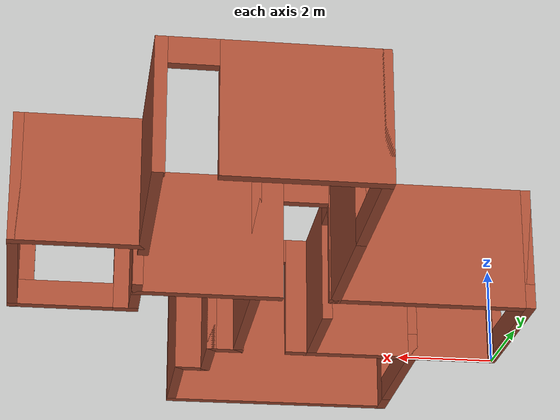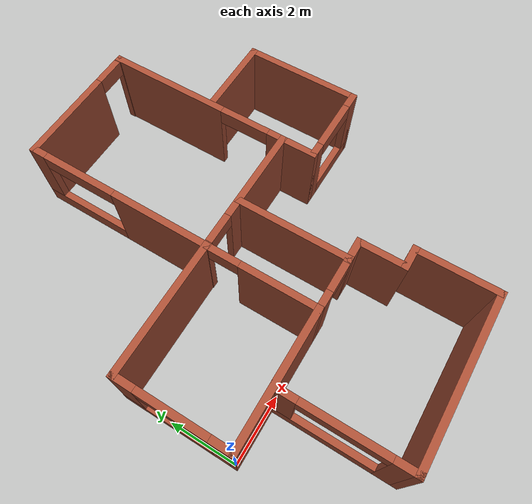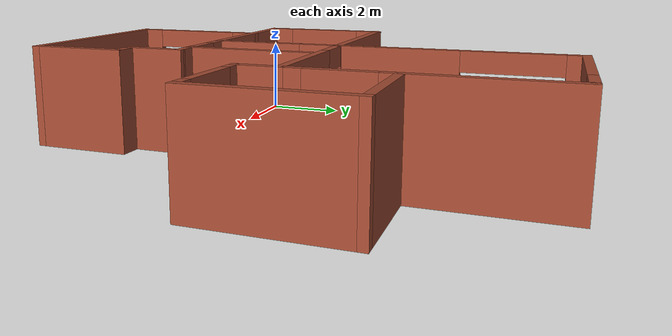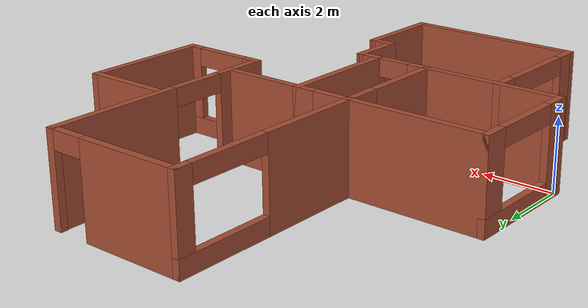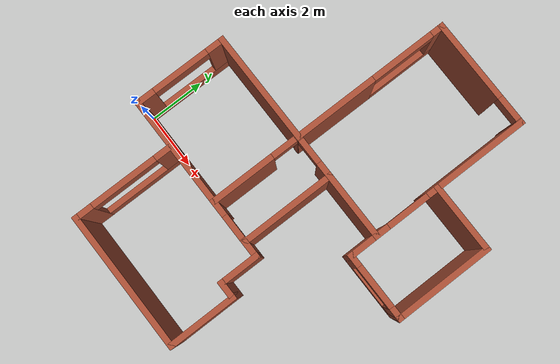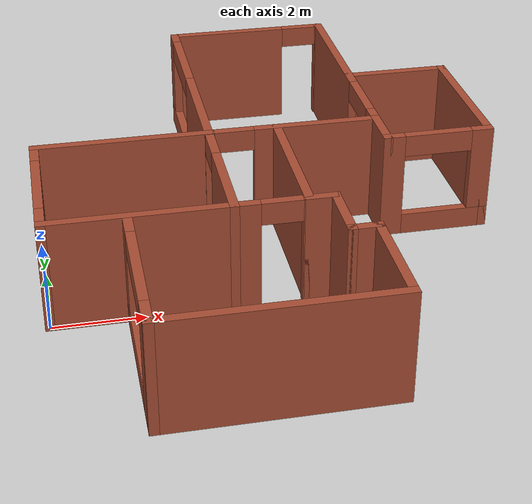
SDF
<?xml version='1.0'?>
<sdf version='1.7'>
  <model name='house'>
    <pose>5.025 2.65 0 0 -0 0</pose>
    <link name='Wall_0'>
      <pose>-5.025 -1.025 0 0 -0 1.5708</pose>
      <visual name='Wall_0_Visual_0'>
        <pose>-1.36843 0 1.25 0 -0 0</pose>
        <geometry>
          <box>
            <size>0.713143 0.2 2.5</size>
          </box>
        </geometry>
        <material>
          <script>
            <uri>file://media/materials/scripts/gazebo.material</uri>
            <name>Gazebo/Bricks</name>
          </script>
          <ambient>1 1 1 1</ambient>
        </material>
        <meta>
          <layer>0</layer>
        </meta>
      </visual>
      <collision name='Wall_0_Collision_0'>
        <geometry>
          <box>
            <size>0.713143 0.2 2.5</size>
          </box>
        </geometry>
        <pose>-1.36843 0 1.25 0 -0 0</pose>
      </collision>
      <visual name='Wall_0_Visual_1'>
        <pose>0.356572 0 0.25 0 -0 0</pose>
        <geometry>
          <box>
            <size>2.73686 0.2 0.5</size>
          </box>
        </geometry>
        <material>
          <script>
            <uri>file://media/materials/scripts/gazebo.material</uri>
            <name>Gazebo/Bricks</name>
          </script>
          <ambient>1 1 1 1</ambient>
        </material>
        <meta>
          <layer>0</layer>
        </meta>
      </visual>
      <collision name='Wall_0_Collision_1'>
        <geometry>
          <box>
            <size>2.73686 0.2 0.5</size>
          </box>
        </geometry>
        <pose>0.356572 0 0.25 0 -0 0</pose>
      </collision>
      <visual name='Wall_0_Visual_2'>
        <pose>1.37355 0 1.5 0 -0 0</pose>
        <geometry>
          <box>
            <size>0.702896 0.2 2</size>
          </box>
        </geometry>
        <material>
          <script>
            <uri>file://media/materials/scripts/gazebo.material</uri>
            <name>Gazebo/Bricks</name>
          </script>
          <ambient>1 1 1 1</ambient>
        </material>
        <meta>
          <layer>0</layer>
        </meta>
      </visual>
      <collision name='Wall_0_Collision_2'>
        <geometry>
          <box>
            <size>0.702896 0.2 2</size>
          </box>
        </geometry>
        <pose>1.37355 0 1.5 0 -0 0</pose>
      </collision>
      <visual name='Wall_0_Visual_3'>
        <pose>0.005124 0 2.25 0 -0 0</pose>
        <geometry>
          <box>
            <size>2.03396 0.2 0.5</size>
          </box>
        </geometry>
        <material>
          <script>
            <uri>file://media/materials/scripts/gazebo.material</uri>
            <name>Gazebo/Bricks</name>
          </script>
          <ambient>1 1 1 1</ambient>
        </material>
        <meta>
          <layer>0</layer>
        </meta>
      </visual>
      <collision name='Wall_0_Collision_3'>
        <geometry>
          <box>
            <size>2.03396 0.2 0.5</size>
          </box>
        </geometry>
        <pose>0.005124 0 2.25 0 -0 0</pose>
      </collision>
    </link>
    <link name='Wall_10'>
      <pose>-1.175 3.425 0 0 -0 1.5708</pose>
      <visual name='Wall_10_Visual_0'>
        <pose>-1.40095 0 1.25 0 -0 0</pose>
        <geometry>
          <box>
            <size>3.0481 0.2 2.5</size>
          </box>
        </geometry>
        <material>
          <script>
            <uri>file://media/materials/scripts/gazebo.material</uri>
            <name>Gazebo/Bricks</name>
          </script>
          <ambient>1 1 1 1</ambient>
        </material>
        <meta>
          <layer>0</layer>
        </meta>
      </visual>
      <collision name='Wall_10_Collision_0'>
        <geometry>
          <box>
            <size>3.0481 0.2 2.5</size>
          </box>
        </geometry>
        <pose>-1.40095 0 1.25 0 -0 0</pose>
      </collision>
      <visual name='Wall_10_Visual_1'>
        <pose>1.52405 0 0.25 0 -0 0</pose>
        <geometry>
          <box>
            <size>2.8019 0.2 0.5</size>
          </box>
        </geometry>
        <material>
          <script>
            <uri>file://media/materials/scripts/gazebo.material</uri>
            <name>Gazebo/Bricks</name>
          </script>
          <ambient>1 1 1 1</ambient>
        </material>
        <meta>
          <layer>0</layer>
        </meta>
      </visual>
      <collision name='Wall_10_Collision_1'>
        <geometry>
          <box>
            <size>2.8019 0.2 0.5</size>
          </box>
        </geometry>
        <pose>1.52405 0 0.25 0 -0 0</pose>
      </collision>
      <visual name='Wall_10_Visual_2'>
        <pose>2.67164 0 1.5 0 -0 0</pose>
        <geometry>
          <box>
            <size>0.506722 0.2 2</size>
          </box>
        </geometry>
        <material>
          <script>
            <uri>file://media/materials/scripts/gazebo.material</uri>
            <name>Gazebo/Bricks</name>
          </script>
          <ambient>1 1 1 1</ambient>
        </material>
        <meta>
          <layer>0</layer>
        </meta>
      </visual>
      <collision name='Wall_10_Collision_2'>
        <geometry>
          <box>
            <size>0.506722 0.2 2</size>
          </box>
        </geometry>
        <pose>2.67164 0 1.5 0 -0 0</pose>
      </collision>
      <visual name='Wall_10_Visual_3'>
        <pose>1.27069 0 2.25 0 -0 0</pose>
        <geometry>
          <box>
            <size>2.29518 0.2 0.5</size>
          </box>
        </geometry>
        <material>
          <script>
            <uri>file://media/materials/scripts/gazebo.material</uri>
            <name>Gazebo/Bricks</name>
          </script>
          <ambient>1 1 1 1</ambient>
        </material>
        <meta>
          <layer>0</layer>
        </meta>
      </visual>
      <collision name='Wall_10_Collision_3'>
        <geometry>
          <box>
            <size>2.29518 0.2 0.5</size>
          </box>
        </geometry>
        <pose>1.27069 0 2.25 0 -0 0</pose>
      </collision>
    </link>
    <link name='Wall_12'>
      <pose>0.75 6.25 0 0 -0 0</pose>
      <visual name='Wall_12_Visual_0'>
        <pose>-0.551233 0 1.25 0 -0 0</pose>
        <geometry>
          <box>
            <size>2.94753 0.2 2.5</size>
          </box>
        </geometry>
        <material>
          <script>
            <uri>file://media/materials/scripts/gazebo.material</uri>
            <name>Gazebo/Bricks</name>
          </script>
          <ambient>1 1 1 1</ambient>
        </material>
        <meta>
          <layer>0</layer>
        </meta>
      </visual>
      <collision name='Wall_12_Collision_0'>
        <geometry>
          <box>
            <size>2.94753 0.2 2.5</size>
          </box>
        </geometry>
        <pose>-0.551233 0 1.25 0 -0 0</pose>
      </collision>
      <visual name='Wall_12_Visual_1'>
        <pose>1.91377 0 1.25 0 -0 0</pose>
        <geometry>
          <box>
            <size>0.222466 0.2 2.5</size>
          </box>
        </geometry>
        <material>
          <script>
            <uri>file://media/materials/scripts/gazebo.material</uri>
            <name>Gazebo/Bricks</name>
          </script>
          <ambient>1 1 1 1</ambient>
        </material>
        <meta>
          <layer>0</layer>
        </meta>
      </visual>
      <collision name='Wall_12_Collision_1'>
        <geometry>
          <box>
            <size>0.222466 0.2 2.5</size>
          </box>
        </geometry>
        <pose>1.91377 0 1.25 0 -0 0</pose>
      </collision>
      <visual name='Wall_12_Visual_2'>
        <pose>1.36253 0 2.25 0 -0 0</pose>
        <geometry>
          <box>
            <size>0.88 0.2 0.5</size>
          </box>
        </geometry>
        <material>
          <script>
            <uri>file://media/materials/scripts/gazebo.material</uri>
            <name>Gazebo/Bricks</name>
          </script>
          <ambient>1 1 1 1</ambient>
        </material>
        <meta>
          <layer>0</layer>
        </meta>
      </visual>
      <collision name='Wall_12_Collision_2'>
        <geometry>
          <box>
            <size>0.88 0.2 0.5</size>
          </box>
        </geometry>
        <pose>1.36253 0 2.25 0 -0 0</pose>
      </collision>
    </link>
    <link name='Wall_14'>
      <pose>2.675 3.425 0 0 -0 -1.5708</pose>
      <visual name='Wall_14_Visual_0'>
        <pose>-1.04269 0 1.25 0 -0 0</pose>
        <geometry>
          <box>
            <size>3.76461 0.2 2.5</size>
          </box>
        </geometry>
        <material>
          <script>
            <uri>file://media/materials/scripts/gazebo.material</uri>
            <name>Gazebo/Bricks</name>
          </script>
          <ambient>1 1 1 1</ambient>
        </material>
        <meta>
          <layer>0</layer>
        </meta>
      </visual>
      <collision name='Wall_14_Collision_0'>
        <geometry>
          <box>
            <size>3.76461 0.2 2.5</size>
          </box>
        </geometry>
        <pose>-1.04269 0 1.25 0 -0 0</pose>
      </collision>
      <visual name='Wall_14_Visual_1'>
        <pose>2.64289 0 1.25 0 -0 0</pose>
        <geometry>
          <box>
            <size>0.564216 0.2 2.5</size>
          </box>
        </geometry>
        <material>
          <script>
            <uri>file://media/materials/scripts/gazebo.material</uri>
            <name>Gazebo/Bricks</name>
          </script>
          <ambient>1 1 1 1</ambient>
        </material>
        <meta>
          <layer>0</layer>
        </meta>
      </visual>
      <collision name='Wall_14_Collision_1'>
        <geometry>
          <box>
            <size>0.564216 0.2 2.5</size>
          </box>
        </geometry>
        <pose>2.64289 0 1.25 0 -0 0</pose>
      </collision>
      <visual name='Wall_14_Visual_2'>
        <pose>1.6002 0 2.25 0 -0 0</pose>
        <geometry>
          <box>
            <size>1.52117 0.2 0.5</size>
          </box>
        </geometry>
        <material>
          <script>
            <uri>file://media/materials/scripts/gazebo.material</uri>
            <name>Gazebo/Bricks</name>
          </script>
          <ambient>1 1 1 1</ambient>
        </material>
        <meta>
          <layer>0</layer>
        </meta>
      </visual>
      <collision name='Wall_14_Collision_2'>
        <geometry>
          <box>
            <size>1.52117 0.2 0.5</size>
          </box>
        </geometry>
        <pose>1.6002 0 2.25 0 -0 0</pose>
      </collision>
    </link>
    <link name='Wall_16'>
      <pose>0.75 0.6 0 0 -0 3.14159</pose>
      <visual name='Wall_16_Visual_0'>
        <pose>-0.561481 0 1.25 0 -0 0</pose>
        <geometry>
          <box>
            <size>2.92704 0.2 2.5</size>
          </box>
        </geometry>
        <material>
          <script>
            <uri>file://media/materials/scripts/gazebo.material</uri>
            <name>Gazebo/Bricks</name>
          </script>
          <ambient>1 1 1 1</ambient>
        </material>
        <meta>
          <layer>0</layer>
        </meta>
      </visual>
      <collision name='Wall_16_Collision_0'>
        <geometry>
          <box>
            <size>2.92704 0.2 2.5</size>
          </box>
        </geometry>
        <pose>-0.561481 0 1.25 0 -0 0</pose>
      </collision>
      <visual name='Wall_16_Visual_1'>
        <pose>1.91352 0 1.25 0 -0 0</pose>
        <geometry>
          <box>
            <size>0.222963 0.2 2.5</size>
          </box>
        </geometry>
        <material>
          <script>
            <uri>file://media/materials/scripts/gazebo.material</uri>
            <name>Gazebo/Bricks</name>
          </script>
          <ambient>1 1 1 1</ambient>
        </material>
        <meta>
          <layer>0</layer>
        </meta>
      </visual>
      <collision name='Wall_16_Collision_1'>
        <geometry>
          <box>
            <size>0.222963 0.2 2.5</size>
          </box>
        </geometry>
        <pose>1.91352 0 1.25 0 -0 0</pose>
      </collision>
      <visual name='Wall_16_Visual_2'>
        <pose>1.35204 0 2.25 0 -0 0</pose>
        <geometry>
          <box>
            <size>0.9 0.2 0.5</size>
          </box>
        </geometry>
        <material>
          <script>
            <uri>file://media/materials/scripts/gazebo.material</uri>
            <name>Gazebo/Bricks</name>
          </script>
          <ambient>1 1 1 1</ambient>
        </material>
        <meta>
          <layer>0</layer>
        </meta>
      </visual>
      <collision name='Wall_16_Collision_2'>
        <geometry>
          <box>
            <size>0.9 0.2 0.5</size>
          </box>
        </geometry>
        <pose>1.35204 0 2.25 0 -0 0</pose>
      </collision>
    </link>
    <link name='Wall_18'>
      <pose>3.85 -0.375 0 0 -0 0</pose>
      <visual name='Wall_18_Visual_0'>
        <pose>-1.02416 0 1.25 0 -0 0</pose>
        <geometry>
          <box>
            <size>0.501673 0.2 2.5</size>
          </box>
        </geometry>
        <material>
          <script>
            <uri>file://media/materials/scripts/gazebo.material</uri>
            <name>Gazebo/Bricks</name>
          </script>
          <ambient>1 1 1 1</ambient>
        </material>
        <meta>
          <layer>0</layer>
        </meta>
      </visual>
      <collision name='Wall_18_Collision_0'>
        <geometry>
          <box>
            <size>0.501673 0.2 2.5</size>
          </box>
        </geometry>
        <pose>-1.02416 0 1.25 0 -0 0</pose>
      </collision>
      <visual name='Wall_18_Visual_1'>
        <pose>0.250837 0 0.25 0 -0 0</pose>
        <geometry>
          <box>
            <size>2.04833 0.2 0.5</size>
          </box>
        </geometry>
        <material>
          <script>
            <uri>file://media/materials/scripts/gazebo.material</uri>
            <name>Gazebo/Bricks</name>
          </script>
          <ambient>1 1 1 1</ambient>
        </material>
        <meta>
          <layer>0</layer>
        </meta>
      </visual>
      <collision name='Wall_18_Collision_1'>
        <geometry>
          <box>
            <size>2.04833 0.2 0.5</size>
          </box>
        </geometry>
        <pose>0.250837 0 0.25 0 -0 0</pose>
      </collision>
      <visual name='Wall_18_Visual_2'>
        <pose>1.02465 0 1.5 0 -0 0</pose>
        <geometry>
          <box>
            <size>0.500698 0.2 2</size>
          </box>
        </geometry>
        <material>
          <script>
            <uri>file://media/materials/scripts/gazebo.material</uri>
            <name>Gazebo/Bricks</name>
          </script>
          <ambient>1 1 1 1</ambient>
        </material>
        <meta>
          <layer>0</layer>
        </meta>
      </visual>
      <collision name='Wall_18_Collision_2'>
        <geometry>
          <box>
            <size>0.500698 0.2 2</size>
          </box>
        </geometry>
        <pose>1.02465 0 1.5 0 -0 0</pose>
      </collision>
      <visual name='Wall_18_Visual_3'>
        <pose>0.000487 0 2.25 0 -0 0</pose>
        <geometry>
          <box>
            <size>1.54763 0.2 0.5</size>
          </box>
        </geometry>
        <material>
          <script>
            <uri>file://media/materials/scripts/gazebo.material</uri>
            <name>Gazebo/Bricks</name>
          </script>
          <ambient>1 1 1 1</ambient>
        </material>
        <meta>
          <layer>0</layer>
        </meta>
      </visual>
      <collision name='Wall_18_Collision_3'>
        <geometry>
          <box>
            <size>1.54763 0.2 0.5</size>
          </box>
        </geometry>
        <pose>0.000487 0 2.25 0 -0 0</pose>
      </collision>
    </link>
    <link name='Wall_2'>
      <collision name='Wall_2_Collision'>
        <geometry>
          <box>
            <size>4.05 0.2 2.5</size>
          </box>
        </geometry>
        <pose>0 0 1.25 0 -0 0</pose>
      </collision>
      <visual name='Wall_2_Visual'>
        <pose>0 0 1.25 0 -0 0</pose>
        <geometry>
          <box>
            <size>4.05 0.2 2.5</size>
          </box>
        </geometry>
        <material>
          <script>
            <uri>file://media/materials/scripts/gazebo.material</uri>
            <name>Gazebo/Bricks</name>
          </script>
          <ambient>1 1 1 1</ambient>
        </material>
        <meta>
          <layer>0</layer>
        </meta>
      </visual>
      <pose>-3.1 -2.65 0 0 -0 0</pose>
    </link>
    <link name='Wall_20'>
      <collision name='Wall_20_Collision'>
        <geometry>
          <box>
            <size>3.55 0.2 2.5</size>
          </box>
        </geometry>
        <pose>0 0 1.25 0 -0 0</pose>
      </collision>
      <visual name='Wall_20_Visual'>
        <pose>0 0 1.25 0 -0 0</pose>
        <geometry>
          <box>
            <size>3.55 0.2 2.5</size>
          </box>
        </geometry>
        <material>
          <script>
            <uri>file://media/materials/scripts/gazebo.material</uri>
            <name>Gazebo/Bricks</name>
          </script>
          <ambient>1 1 1 1</ambient>
        </material>
        <meta>
          <layer>0</layer>
        </meta>
      </visual>
      <pose>5.025 1.3 0 0 -0 1.5708</pose>
    </link>
    <link name='Wall_22'>
      <collision name='Wall_22_Collision'>
        <geometry>
          <box>
            <size>2.55 0.2 2.5</size>
          </box>
        </geometry>
        <pose>0 0 1.25 0 -0 0</pose>
      </collision>
      <visual name='Wall_22_Visual'>
        <pose>0 0 1.25 0 -0 0</pose>
        <geometry>
          <box>
            <size>2.55 0.2 2.5</size>
          </box>
        </geometry>
        <material>
          <script>
            <uri>file://media/materials/scripts/gazebo.material</uri>
            <name>Gazebo/Bricks</name>
          </script>
          <ambient>1 1 1 1</ambient>
        </material>
        <meta>
          <layer>0</layer>
        </meta>
      </visual>
      <pose>3.85 2.975 0 0 -0 3.14159</pose>
    </link>
    <link name='Wall_24'>
      <collision name='Wall_24_Collision'>
        <geometry>
          <box>
            <size>1.175 0.2 2.5</size>
          </box>
        </geometry>
        <pose>0 0 1.25 0 -0 0</pose>
      </collision>
      <visual name='Wall_24_Visual'>
        <pose>0 0 1.25 0 -0 0</pose>
        <geometry>
          <box>
            <size>1.175 0.2 2.5</size>
          </box>
        </geometry>
        <material>
          <script>
            <uri>file://media/materials/scripts/gazebo.material</uri>
            <name>Gazebo/Bricks</name>
          </script>
          <ambient>1 1 1 1</ambient>
        </material>
        <meta>
          <layer>0</layer>
        </meta>
      </visual>
      <pose>2.675 0.1125 0 0 -0 -1.5708</pose>
    </link>
    <link name='Wall_26'>
      <pose>-3.325 -4.45 0 0 -0 1.5708</pose>
      <visual name='Wall_26_Visual_0'>
        <pose>-1.54493 0 1.25 0 -0 0</pose>
        <geometry>
          <box>
            <size>0.710145 0.2 2.5</size>
          </box>
        </geometry>
        <material>
          <script>
            <uri>file://media/materials/scripts/gazebo.material</uri>
            <name>Gazebo/Bricks</name>
          </script>
          <ambient>1 1 1 1</ambient>
        </material>
        <meta>
          <layer>0</layer>
        </meta>
      </visual>
      <collision name='Wall_26_Collision_0'>
        <geometry>
          <box>
            <size>0.710145 0.2 2.5</size>
          </box>
        </geometry>
        <pose>-1.54493 0 1.25 0 -0 0</pose>
      </collision>
      <visual name='Wall_26_Visual_1'>
        <pose>0.355072 0 0.25 0 -0 0</pose>
        <geometry>
          <box>
            <size>3.08986 0.2 0.5</size>
          </box>
        </geometry>
        <material>
          <script>
            <uri>file://media/materials/scripts/gazebo.material</uri>
            <name>Gazebo/Bricks</name>
          </script>
          <ambient>1 1 1 1</ambient>
        </material>
        <meta>
          <layer>0</layer>
        </meta>
      </visual>
      <collision name='Wall_26_Collision_1'>
        <geometry>
          <box>
            <size>3.08986 0.2 0.5</size>
          </box>
        </geometry>
        <pose>0.355072 0 0.25 0 -0 0</pose>
      </collision>
      <visual name='Wall_26_Visual_2'>
        <pose>1.53964 0 1.5 0 -0 0</pose>
        <geometry>
          <box>
            <size>0.720727 0.2 2</size>
          </box>
        </geometry>
        <material>
          <script>
            <uri>file://media/materials/scripts/gazebo.material</uri>
            <name>Gazebo/Bricks</name>
          </script>
          <ambient>1 1 1 1</ambient>
        </material>
        <meta>
          <layer>0</layer>
        </meta>
      </visual>
      <collision name='Wall_26_Collision_2'>
        <geometry>
          <box>
            <size>0.720727 0.2 2</size>
          </box>
        </geometry>
        <pose>1.53964 0 1.5 0 -0 0</pose>
      </collision>
      <visual name='Wall_26_Visual_3'>
        <pose>-0.005291 0 2.25 0 -0 0</pose>
        <geometry>
          <box>
            <size>2.36913 0.2 0.5</size>
          </box>
        </geometry>
        <material>
          <script>
            <uri>file://media/materials/scripts/gazebo.material</uri>
            <name>Gazebo/Bricks</name>
          </script>
          <ambient>1 1 1 1</ambient>
        </material>
        <meta>
          <layer>0</layer>
        </meta>
      </visual>
      <collision name='Wall_26_Collision_3'>
        <geometry>
          <box>
            <size>2.36913 0.2 0.5</size>
          </box>
        </geometry>
        <pose>-0.005291 0 2.25 0 -0 0</pose>
      </collision>
    </link>
    <link name='Wall_28'>
      <collision name='Wall_28_Collision'>
        <geometry>
          <box>
            <size>5 0.2 2.5</size>
          </box>
        </geometry>
        <pose>0 0 1.25 0 -0 0</pose>
      </collision>
      <visual name='Wall_28_Visual'>
        <pose>0 0 1.25 0 -0 0</pose>
        <geometry>
          <box>
            <size>5 0.2 2.5</size>
          </box>
        </geometry>
        <material>
          <script>
            <uri>file://media/materials/scripts/gazebo.material</uri>
            <name>Gazebo/Bricks</name>
          </script>
          <ambient>1 1 1 1</ambient>
        </material>
        <meta>
          <layer>0</layer>
        </meta>
      </visual>
      <pose>-0.925 -6.25 0 0 -0 3.14159</pose>
    </link>
    <link name='Wall_30'>
      <collision name='Wall_30_Collision'>
        <geometry>
          <box>
            <size>1.5 0.2 2.5</size>
          </box>
        </geometry>
        <pose>0 0 1.25 0 -0 0</pose>
      </collision>
      <visual name='Wall_30_Visual'>
        <pose>0 0 1.25 0 -0 0</pose>
        <geometry>
          <box>
            <size>1.5 0.2 2.5</size>
          </box>
        </geometry>
        <material>
          <script>
            <uri>file://media/materials/scripts/gazebo.material</uri>
            <name>Gazebo/Bricks</name>
          </script>
          <ambient>1 1 1 1</ambient>
        </material>
        <meta>
          <layer>0</layer>
        </meta>
      </visual>
      <pose>0.925 -3.3 0 0 -0 -1.5708</pose>
    </link>
    <link name='Wall_32'>
      <collision name='Wall_32_Collision'>
        <geometry>
          <box>
            <size>0.75 0.2 2.5</size>
          </box>
        </geometry>
        <pose>0 0 1.25 0 -0 0</pose>
      </collision>
      <visual name='Wall_32_Visual'>
        <pose>0 0 1.25 0 -0 0</pose>
        <geometry>
          <box>
            <size>0.75 0.2 2.5</size>
          </box>
        </geometry>
        <material>
          <script>
            <uri>file://media/materials/scripts/gazebo.material</uri>
            <name>Gazebo/Bricks</name>
          </script>
          <ambient>1 1 1 1</ambient>
        </material>
        <meta>
          <layer>0</layer>
        </meta>
      </visual>
      <pose>0.65 -2.65 0 0 -0 0</pose>
    </link>
    <link name='Wall_34'>
      <collision name='Wall_34_Collision'>
        <geometry>
          <box>
            <size>3.45 0.2 2.5</size>
          </box>
        </geometry>
        <pose>0 0 1.25 0 -0 0</pose>
      </collision>
      <visual name='Wall_34_Visual'>
        <pose>0 0 1.25 0 -0 0</pose>
        <geometry>
          <box>
            <size>3.45 0.2 2.5</size>
          </box>
        </geometry>
        <material>
          <script>
            <uri>file://media/materials/scripts/gazebo.material</uri>
            <name>Gazebo/Bricks</name>
          </script>
          <ambient>1 1 1 1</ambient>
        </material>
        <meta>
          <layer>0</layer>
        </meta>
      </visual>
      <pose>0.375 -1.025 0 0 -0 1.5708</pose>
    </link>
    <link name='Wall_36'>
      <collision name='Wall_36_Collision'>
        <geometry>
          <box>
            <size>0.75 0.2 2.5</size>
          </box>
        </geometry>
        <pose>0 0 1.25 0 -0 0</pose>
      </collision>
      <visual name='Wall_36_Visual'>
        <pose>0 0 1.25 0 -0 0</pose>
        <geometry>
          <box>
            <size>0.75 0.2 2.5</size>
          </box>
        </geometry>
        <material>
          <script>
            <uri>file://media/materials/scripts/gazebo.material</uri>
            <name>Gazebo/Bricks</name>
          </script>
          <ambient>1 1 1 1</ambient>
        </material>
        <meta>
          <layer>0</layer>
        </meta>
      </visual>
      <pose>1.2 -3.95 0 0 -0 0</pose>
    </link>
    <link name='Wall_38'>
      <collision name='Wall_38_Collision'>
        <geometry>
          <box>
            <size>2.5 0.2 2.5</size>
          </box>
        </geometry>
        <pose>0 0 1.25 0 -0 0</pose>
      </collision>
      <visual name='Wall_38_Visual'>
        <pose>0 0 1.25 0 -0 0</pose>
        <geometry>
          <box>
            <size>2.5 0.2 2.5</size>
          </box>
        </geometry>
        <material>
          <script>
            <uri>file://media/materials/scripts/gazebo.material</uri>
            <name>Gazebo/Bricks</name>
          </script>
          <ambient>1 1 1 1</ambient>
        </material>
        <meta>
          <layer>0</layer>
        </meta>
      </visual>
      <pose>1.475 -5.1 0 0 -0 -1.5708</pose>
    </link>
    <link name='Wall_40'>
      <pose>-0.4 -2.65 0 0 -0 0</pose>
      <visual name='Wall_40_Visual_0'>
        <pose>-0.552479 0 1.25 0 -0 0</pose>
        <geometry>
          <box>
            <size>0.645042 0.2 2.5</size>
          </box>
        </geometry>
        <material>
          <script>
            <uri>file://media/materials/scripts/gazebo.material</uri>
            <name>Gazebo/Bricks</name>
          </script>
          <ambient>1 1 1 1</ambient>
        </material>
        <meta>
          <layer>0</layer>
        </meta>
      </visual>
      <collision name='Wall_40_Collision_0'>
        <geometry>
          <box>
            <size>0.645042 0.2 2.5</size>
          </box>
        </geometry>
        <pose>-0.552479 0 1.25 0 -0 0</pose>
      </collision>
      <visual name='Wall_40_Visual_1'>
        <pose>0.762521 0 1.25 0 -0 0</pose>
        <geometry>
          <box>
            <size>0.224958 0.2 2.5</size>
          </box>
        </geometry>
        <material>
          <script>
            <uri>file://media/materials/scripts/gazebo.material</uri>
            <name>Gazebo/Bricks</name>
          </script>
          <ambient>1 1 1 1</ambient>
        </material>
        <meta>
          <layer>0</layer>
        </meta>
      </visual>
      <collision name='Wall_40_Collision_1'>
        <geometry>
          <box>
            <size>0.224958 0.2 2.5</size>
          </box>
        </geometry>
        <pose>0.762521 0 1.25 0 -0 0</pose>
      </collision>
      <visual name='Wall_40_Visual_2'>
        <pose>0.210042 0 2.25 0 -0 0</pose>
        <geometry>
          <box>
            <size>0.88 0.2 0.5</size>
          </box>
        </geometry>
        <material>
          <script>
            <uri>file://media/materials/scripts/gazebo.material</uri>
            <name>Gazebo/Bricks</name>
          </script>
          <ambient>1 1 1 1</ambient>
        </material>
        <meta>
          <layer>0</layer>
        </meta>
      </visual>
      <collision name='Wall_40_Collision_2'>
        <geometry>
          <box>
            <size>0.88 0.2 0.5</size>
          </box>
        </geometry>
        <pose>0.210042 0 2.25 0 -0 0</pose>
      </collision>
    </link>
    <link name='Wall_5'>
      <pose>-1.175 -1.025 0 0 -0 1.5708</pose>
      <visual name='Wall_5_Visual_0'>
        <pose>-0.548476 0 1.25 0 -0 0</pose>
        <geometry>
          <box>
            <size>2.35305 0.2 2.5</size>
          </box>
        </geometry>
        <material>
          <script>
            <uri>file://media/materials/scripts/gazebo.material</uri>
            <name>Gazebo/Bricks</name>
          </script>
          <ambient>1 1 1 1</ambient>
        </material>
        <meta>
          <layer>0</layer>
        </meta>
      </visual>
      <collision name='Wall_5_Collision_0'>
        <geometry>
          <box>
            <size>2.35305 0.2 2.5</size>
          </box>
        </geometry>
        <pose>-0.548476 0 1.25 0 -0 0</pose>
      </collision>
      <visual name='Wall_5_Visual_1'>
        <pose>1.61652 0 1.25 0 -0 0</pose>
        <geometry>
          <box>
            <size>0.216951 0.2 2.5</size>
          </box>
        </geometry>
        <material>
          <script>
            <uri>file://media/materials/scripts/gazebo.material</uri>
            <name>Gazebo/Bricks</name>
          </script>
          <ambient>1 1 1 1</ambient>
        </material>
        <meta>
          <layer>0</layer>
        </meta>
      </visual>
      <collision name='Wall_5_Collision_1'>
        <geometry>
          <box>
            <size>0.216951 0.2 2.5</size>
          </box>
        </geometry>
        <pose>1.61652 0 1.25 0 -0 0</pose>
      </collision>
      <visual name='Wall_5_Visual_2'>
        <pose>1.06805 0 2.25 0 -0 0</pose>
        <geometry>
          <box>
            <size>0.88 0.2 0.5</size>
          </box>
        </geometry>
        <material>
          <script>
            <uri>file://media/materials/scripts/gazebo.material</uri>
            <name>Gazebo/Bricks</name>
          </script>
          <ambient>1 1 1 1</ambient>
        </material>
        <meta>
          <layer>0</layer>
        </meta>
      </visual>
      <collision name='Wall_5_Collision_2'>
        <geometry>
          <box>
            <size>0.88 0.2 0.5</size>
          </box>
        </geometry>
        <pose>1.06805 0 2.25 0 -0 0</pose>
      </collision>
    </link>
    <link name='Wall_8'>
      <collision name='Wall_8_Collision'>
        <geometry>
          <box>
            <size>4.05 0.2 2.5</size>
          </box>
        </geometry>
        <pose>0 0 1.25 0 -0 0</pose>
      </collision>
      <visual name='Wall_8_Visual'>
        <pose>0 0 1.25 0 -0 0</pose>
        <geometry>
          <box>
            <size>4.05 0.2 2.5</size>
          </box>
        </geometry>
        <material>
          <script>
            <uri>file://media/materials/scripts/gazebo.material</uri>
            <name>Gazebo/Bricks</name>
          </script>
          <ambient>1 1 1 1</ambient>
        </material>
        <meta>
          <layer>0</layer>
        </meta>
      </visual>
      <pose>-3.1 0.6 0 0 -0 0</pose>
    </link>
    <static>1</static>
  </model>
</sdf>
